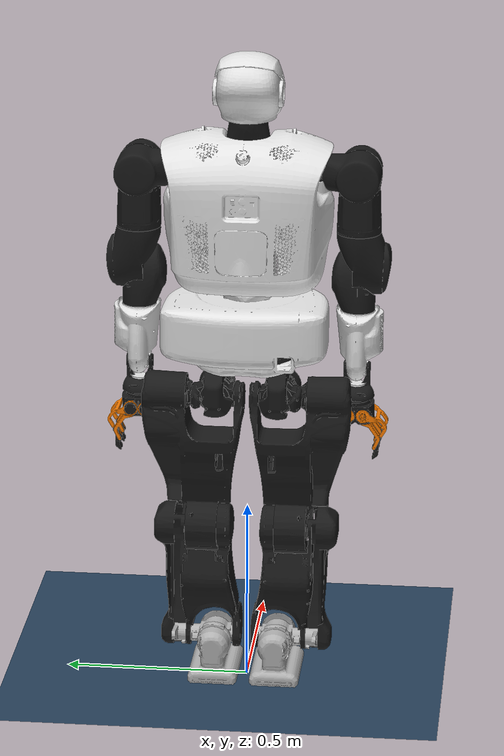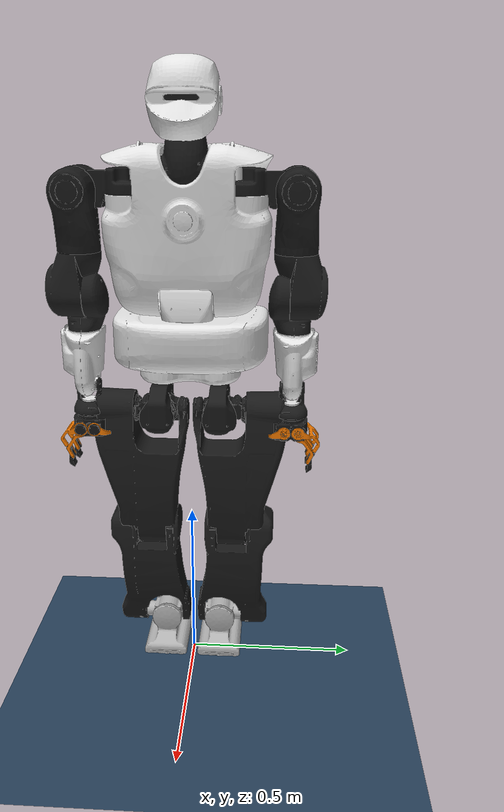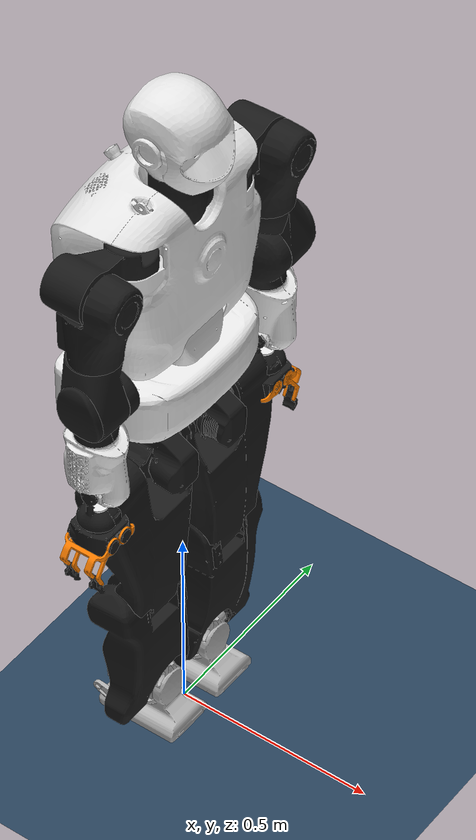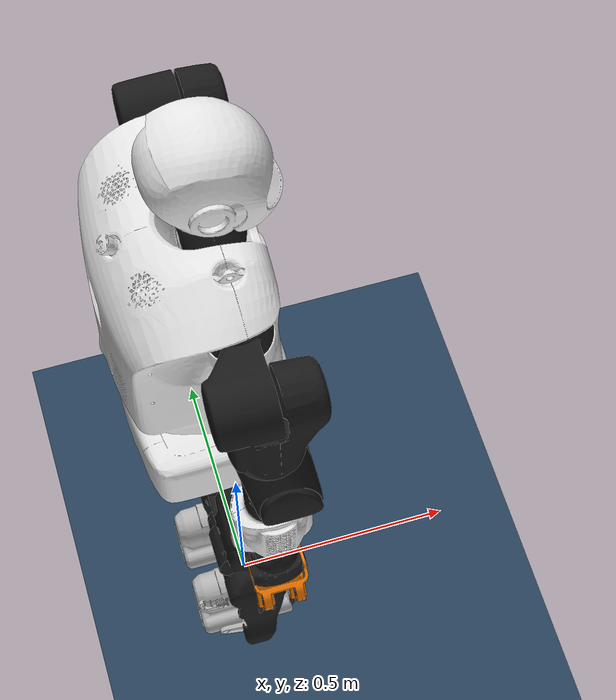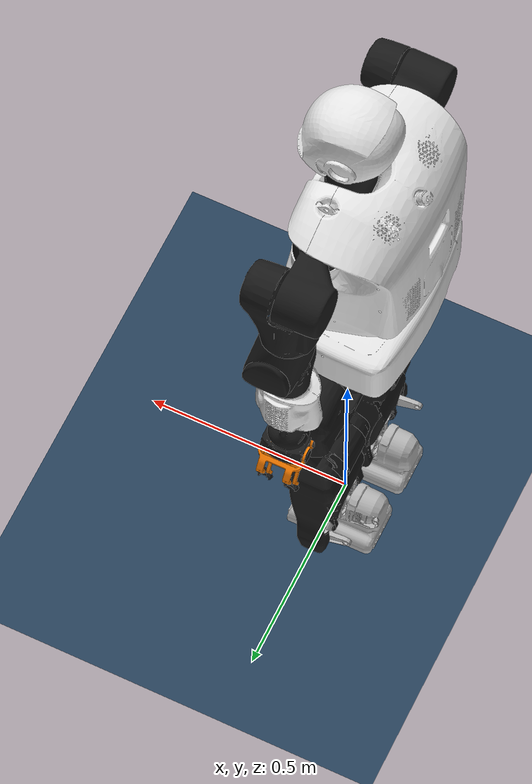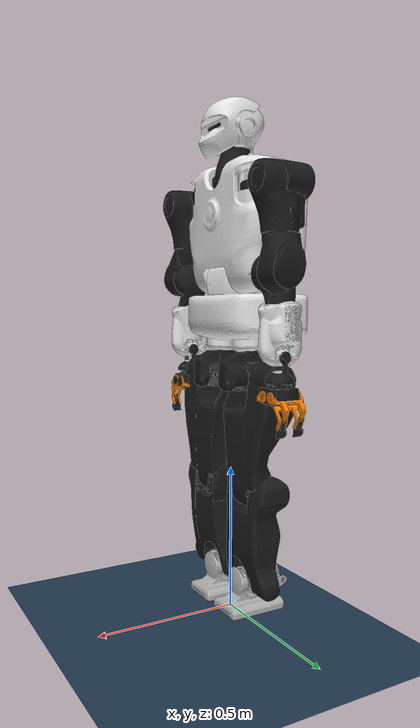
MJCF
<mujoco model="talos position scene">
  <include file="talos_position.xml"/>

  <visual>
    <rgba haze="0.15 0.25 0.35 1"/>
    <global azimuth="160" elevation="-10"/>
    <headlight diffuse="0.6 0.6 0.6" ambient="0.3 0.3 0.3" specular="0 0 0"/>
  </visual>

  <asset>
    <texture type="skybox" builtin="gradient" rgb1="0.3 0.5 0.7" rgb2="0 0 0" width="512" height="3072"/>
    <texture type="2d" name="groundplane" builtin="checker" mark="edge" rgb1="0.2 0.3 0.4" rgb2="0.1 0.2 0.3"
      markrgb="0.8 0.8 0.8" width="300" height="300"/>
    <material name="groundplane" texture="groundplane" texuniform="true" texrepeat="5 5" reflectance="0.2"/>
  </asset>

  <worldbody>
    <light name="spotlight" mode="targetbody" target="base_link" pos="1 0 20"/>
    <geom name="floor" size="0 0 0.05" type="plane" material="groundplane"/>
  </worldbody>
</mujoco>

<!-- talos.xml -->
<mujoco model="talos">
  <compiler angle="radian" meshdir="assets" autolimits="true"/>

  <option timestep="0.001" integrator="implicitfast"/>

  <asset>
    <material name="black" rgba="0.1 0.1 0.1 1"/>
    <material name="orange" rgba="1 0.5 0 1"/>
    <material name="white" rgba="0.9 0.9 0.9 1"/>

    <mesh file="torso/torso_1.stl"/>
    <mesh file="torso/torso_2.stl"/>
    <mesh file="torso/torso_2_collision.stl"/>
    <mesh file="torso/base_link.stl"/>
    <mesh file="torso/base_link_collision.stl"/>
    <mesh file="head/head_1.stl"/>
    <mesh file="head/head_1_collision.stl"/>
    <mesh file="head/head_2_default.stl"/>
    <mesh file="head/head_2_default_collision.stl"/>
    <mesh file="sensors/orbbec/orbbec.stl"/>
    <mesh name="l_arm_1" file="arm/arm_1.stl"/>
    <mesh name="l_arm_1c" file="arm/arm_1_collision.stl"/>
    <mesh name="l_arm_2" file="arm/arm_2.stl"/>
    <mesh name="l_arm_2c" file="arm/arm_2_collision.stl"/>
    <mesh name="l_arm_3" file="arm/arm_3.stl"/>
    <mesh name="l_arm_3c" file="arm/arm_3_collision.stl"/>
    <mesh name="l_arm_4" file="arm/arm_4.stl"/>
    <mesh name="l_arm_4c" file="arm/arm_4_collision.stl"/>
    <mesh name="l_arm_5" file="arm/arm_5.stl"/>
    <mesh name="l_arm_5c" file="arm/arm_5_collision.stl"/>
    <mesh name="l_arm_6" file="arm/arm_6.stl"/>
    <mesh name="l_arm_6c" file="arm/arm_6_collision.stl"/>
    <mesh name="l_arm_7" file="arm/arm_7.stl"/>
    <mesh name="l_arm_7c" file="arm/arm_7_collision.stl"/>
    <mesh name="r_arm_1" file="arm/arm_1.stl" scale="1 -1 1"/>
    <mesh name="r_arm_1c" file="arm/arm_1_collision.stl" scale="1 -1 1"/>
    <mesh name="r_arm_2" file="arm/arm_2.stl" scale="1 -1 1"/>
    <mesh name="r_arm_2c" file="arm/arm_2_collision.stl" scale="1 -1 1"/>
    <mesh name="r_arm_3" file="arm/arm_3.stl" scale="1 -1 1"/>
    <mesh name="r_arm_3c" file="arm/arm_3_collision.stl" scale="1 -1 1"/>
    <mesh name="r_arm_4" file="arm/arm_4.stl" scale="1 -1 1"/>
    <mesh name="r_arm_4c" file="arm/arm_4_collision.stl" scale="1 -1 1"/>
    <mesh name="r_arm_5" file="arm/arm_5.stl" scale="1 -1 1"/>
    <mesh name="r_arm_5c" file="arm/arm_5_collision.stl" scale="1 -1 1"/>
    <mesh name="r_arm_6" file="arm/arm_6.stl" scale="1 -1 1"/>
    <mesh name="r_arm_6c" file="arm/arm_6_collision.stl" scale="1 -1 1"/>
    <mesh name="r_arm_7" file="arm/arm_7.stl" scale="1 -1 1"/>
    <mesh name="r_arm_7c" file="arm/arm_7_collision.stl" scale="1 -1 1"/>
    <mesh name="gripper_base_link" file="gripper/base_link.stl"/>
    <mesh name="gripper_base_link_collision" file="gripper/base_link_collision.stl"/>
    <mesh file="gripper/fingertip.stl"/>
    <mesh file="gripper/fingertip_collision.stl"/>
    <mesh file="gripper/gripper_motor_double.stl"/>
    <mesh file="gripper/gripper_motor_double_collision.stl"/>
    <mesh file="gripper/gripper_motor_single.stl"/>
    <mesh file="gripper/gripper_motor_single_collision.stl"/>
    <mesh file="gripper/inner_double.stl"/>
    <mesh file="gripper/inner_double_collision.stl"/>
    <mesh file="gripper/inner_single.stl"/>
    <mesh file="gripper/inner_single_collision.stl"/>
    <mesh name="l_hip_z_lo_res" file="v2/hip_z_lo_res.stl"/>
    <mesh name="l_hip_z_collision" file="v2/hip_z_collision.stl"/>
    <mesh name="l_hip_x_lo_res" file="v2/hip_x_lo_res.stl"/>
    <mesh name="l_hip_x_collision" file="v2/hip_x_collision.stl"/>
    <mesh name="l_hip_y_lo_res" file="v2/hip_y_lo_res.stl"/>
    <mesh name="l_hip_y_collision" file="v2/hip_y_collision.stl"/>
    <mesh name="l_knee_lo_res" file="v2/knee_lo_res.stl"/>
    <mesh name="l_knee_collision" file="v2/knee_collision.stl"/>
    <mesh name="l_ankle_Y_lo_res" file="v2/ankle_Y_lo_res.stl"/>
    <mesh name="l_ankle_Y_collision" file="v2/ankle_Y_collision.stl"/>
    <mesh name="l_ankle_X_lo_res" file="v2/ankle_X_lo_res.stl"/>
    <mesh name="l_ankle_X_collision" file="v2/ankle_X_collision.stl" scale="1 1 0.88"/>
    <mesh name="r_hip_z_lo_res" file="v2/hip_z_lo_res.stl" scale="1 -1 1"/>
    <mesh name="r_hip_z_collision" file="v2/hip_z_collision.stl" scale="1 -1 1"/>
    <mesh name="r_hip_x_lo_res" file="v2/hip_x_lo_res.stl" scale="1 -1 1"/>
    <mesh name="r_hip_x_collision" file="v2/hip_x_collision.stl" scale="1 -1 1"/>
    <mesh name="r_hip_y_lo_res" file="v2/hip_y_lo_res.stl" scale="1 -1 1"/>
    <mesh name="r_hip_y_collision" file="v2/hip_y_collision.stl" scale="1 -1 1"/>
    <mesh name="r_knee_lo_res" file="v2/knee_lo_res.stl" scale="1 -1 1"/>
    <mesh name="r_knee_collision" file="v2/knee_collision.stl" scale="1 -1 1"/>
    <mesh name="r_ankle_Y_lo_res" file="v2/ankle_Y_lo_res.stl" scale="1 -1 1"/>
    <mesh name="r_ankle_Y_collision" file="v2/ankle_Y_collision.stl" scale="1 -1 1"/>
    <mesh name="r_ankle_X_lo_res" file="v2/ankle_X_lo_res.stl" scale="1 -1 1"/>
    <mesh name="r_ankle_X_collision" file="v2/ankle_X_collision.stl" scale="1 -1 0.88"/>
  </asset>

  <default>
    <default class="talos">
      <site rgba="1 0 0 1" size="0.01" group="5"/>
      <joint frictionloss="1" damping="1"/>
      <geom type="mesh" solref="0.001 1"/>
      <default class="visual">
        <geom group="2" contype="0" conaffinity="0" density="0"/>
      </default>
      <default class="collision">
        <geom group="3"/>
      </default>
    </default>
  </default>

  <worldbody>
    <body name="base_link" pos="0 0 1.1" childclass="talos">
      <freejoint name="reference"/>
      <inertial pos="-0.05709419 0.00153054 -0.0762521" mass="15.36284"
        fullinertia="0.20105075811 0.08411496729 0.2318908414 0.00023244734 0.0040167728 -0.00087206649"/>
      <geom class="visual" material="white" mesh="base_link"/>
      <geom material="white" mesh="base_link_collision" class="collision"/>
      <body name="torso_1_link" pos="0 0 0.0722">
        <inertial pos="0.00078223 3.528e-05 -0.0178246" quat="0.703744 0.704233 0.0663452 -0.0663278" mass="2.29466"
          diaginertia="0.00639091 0.00622386 0.00410256"/>
        <joint name="torso_1_joint" axis="0 0 1" range="-1.25664 1.25664" frictionloss="2" actuatorfrcrange="-200 200"/>
        <geom class="visual" material="white" mesh="torso_1"/>
        <geom class="collision" material="white" mesh="torso_1"/>
        <body name="torso_2_link">
          <inertial pos="-0.0463 -0.000989647 0.145241" quat="0.704021 0.708473 0.0363665 -0.0331367" mass="16.984"
            diaginertia="0.444971 0.320913 0.299991"/>
          <joint name="torso_2_joint" axis="0 1 0" range="-0.226893 0.733038" frictionloss="2"
            actuatorfrcrange="-200 200"/>
          <geom class="visual" material="white" mesh="torso_2"/>
          <geom material="white" mesh="torso_2_collision" class="collision"/>
          <geom size="0.005 0.005 0.005" pos="0.04925 0 0.078" quat="0 1 1 0" type="box" class="visual" density="0"
            material="black"/>
          <body name="head_1_link" pos="0 0 0.316">
            <inertial pos="-0.00157211 -0.00157919 0.0217577" quat="0.679576 0.71147 -0.126684 0.126246" mass="0.73746"
              diaginertia="0.0022809 0.00202202 0.00110971"/>
            <joint name="head_1_joint" axis="0 1 0" range="-0.20944 0.785398" damping="0.5" actuatorfrcrange="-8 8"/>
            <geom class="visual" mesh="head_1" material="black"/>
            <geom mesh="head_1_collision" class="collision" material="black"/>
            <body name="head_2_link">
              <site name="head" pos="0 0 0.2"/>
              <inertial pos="0.0108233 0.000630364 0.142045" quat="0.584927 -0.0294601 -0.0201927 0.810299"
                mass="1.46795" diaginertia="0.0110721 0.0109715 0.00581517"/>
              <joint name="head_2_joint" axis="0 0 1" range="-1.309 1.309" damping="0.5" actuatorfrcrange="-4 4"/>
              <geom class="visual" material="white" mesh="head_2_default"/>
              <geom material="white" mesh="head_2_default_collision" class="collision"/>
              <geom pos="0.0621 0.0375 0.1832" class="visual" mesh="orbbec" material="black"/>
            </body>
          </body>
          <body name="arm_left_1_link" pos="0 0.1575 0.232">
            <inertial pos="-0.0002762 0.100602 0.0443742" quat="0.509187 0.520076 -0.492016 0.477671" mass="2.71457"
              diaginertia="0.0135919 0.012374 0.00418528"/>
            <joint name="arm_left_1_joint" axis="0 0 1" range="-1.5708 0.785398" actuatorfrcrange="-100 100"/>
            <geom class="visual" mesh="l_arm_1" material="black"/>
            <geom mesh="l_arm_1c" class="collision" material="black"/>
            <body name="arm_left_2_link" pos="0.00493 0.1365 0.04673">
              <inertial pos="0.0143883 0.00092938 -0.0868427" quat="0.981914 0.00964503 0.164999 0.0923476"
                mass="2.42509" diaginertia="0.0140925 0.0138001 0.00368288"/>
              <joint name="arm_left_2_joint" axis="1 0 0" range="0.00872665 2.87107" actuatorfrcrange="-100 100"/>
              <geom class="visual" mesh="l_arm_2" material="black"/>
              <geom mesh="l_arm_2c" class="collision" material="black"/>
              <body name="arm_left_3_link">
                <inertial pos="0.0136084 0.0124162 -0.2499" quat="0.991718 0.0691072 -0.105592 -0.0238848"
                  mass="2.20874" diaginertia="0.00735601 0.00699198 0.0036592"/>
                <joint name="arm_left_3_joint" axis="0 0 1" range="-2.42601 2.42601" actuatorfrcrange="-70 70"/>
                <geom class="visual" mesh="l_arm_3" material="black"/>
                <geom mesh="l_arm_3c" class="collision" material="black"/>
                <body name="arm_left_4_link" pos="0.02 0 -0.2782">
                  <inertial pos="-0.00810404 -0.0194433 -0.0332924" quat="0.428586 -0.11894 0.057285 0.893804"
                    mass="0.815675" diaginertia="0.00326211 0.002924 0.00111543"/>
                  <joint name="arm_left_4_joint" axis="0 1 0" range="-2.23402 -0.00349066" actuatorfrcrange="-70 70"/>
                  <geom class="visual" mesh="l_arm_4" material="black"/>
                  <geom mesh="l_arm_4c" class="collision" material="black"/>
                  <body name="arm_left_5_link" pos="-0.02 0 -0.2643">
                    <inertial pos="-6e-05 0.003262 0.079625" quat="0.711712 -0.019748 0.0131536 0.70207" mass="1.87792"
                      diaginertia="0.004373 0.003495 0.002278"/>
                    <joint name="arm_left_5_joint" axis="0 0 1" range="-2.51327 2.51327" actuatorfrcrange="-20 20"/>
                    <geom class="visual" material="white" mesh="l_arm_5"/>
                    <geom material="white" mesh="l_arm_5c" class="collision"/>
                    <body name="arm_left_6_link">
                      <inertial pos="2.1e-05 -0.001965 -0.000591" quat="0.0104356 0.706678 0.0122672 0.707352"
                        mass="0.40931" diaginertia="0.000154 0.000141 0.000107"/>
                      <joint name="arm_left_6_joint" axis="1 0 0" range="-1.37008 1.37008" actuatorfrcrange="-8 8"/>
                      <geom class="visual" material="white" mesh="l_arm_6"/>
                      <geom material="white" mesh="l_arm_6c" class="collision"/>
                      <body name="arm_left_7_link">
                        <inertial pos="0.00215393 0.00361697 -0.0837948" quat="0.966304 0.0192407 0.0500561 -0.251755"
                          mass="1.04198" diaginertia="0.00273016 0.00272405 0.0010495"/>
                        <joint name="arm_left_7_joint" axis="0 1 0" range="-0.680678 0.680678" actuatorfrcrange="-8 8"/>
                        <geom class="visual" mesh="l_arm_7" material="black"/>
                        <geom mesh="l_arm_7c" class="collision" material="black"/>
                        <geom size="0.0225 0.00785" pos="0 0 -0.051" quat="-1 0 0 -1" type="cylinder" class="visual"
                          material="white"/>
                        <geom size="0.0225 0.00785" pos="0 0 -0.051" quat="-1 0 0 -1" type="cylinder" material="white"
                          class="collision"/>
                        <geom size="0.025 0.004875" pos="0 0 -0.063725" type="cylinder" class="visual"
                          material="black"/>
                        <geom size="0.025 0.004875" pos="0 0 -0.063725" type="cylinder" class="collision"
                          material="black"/>
                        <geom pos="0 0 -0.092475" class="visual" mesh="gripper_base_link" material="black"/>
                        <geom pos="0 0 -0.092475" mesh="gripper_base_link_collision" class="collision"
                          material="black"/>
                        <body name="gripper_left_motor_double_link" pos="0 0.02025 -0.122475">
                          <inertial pos="0.019654 0.018572 -0.011998" quat="0.434706 0.588708 -0.0217956 0.68116"
                            mass="0.134356" diaginertia="0.000272 0.000221 8e-05"/>
                          <joint name="gripper_left_joint" axis="1 0 0" range="-0.959931 0"/>
                          <geom class="visual" material="orange" mesh="gripper_motor_double"/>
                          <geom material="orange" mesh="gripper_motor_double_collision" class="collision"/>
                        </body>
                        <body name="gripper_left_inner_double_link" pos="0 0.00525 -0.148455">
                          <inertial pos="-0.013283 0.036852 -0.023153" quat="0.312568 0.633813 0.365244 0.605953"
                            mass="0.087986" diaginertia="0.000144 8.89999e-05 7.4e-05"/>
                          <joint name="gripper_left_inner_double_joint" axis="1 0 0" range="-1.0472 0"/>
                          <geom class="visual" material="orange" mesh="inner_double"/>
                          <geom material="orange" mesh="inner_double_collision" class="collision"/>
                          <body name="gripper_left_fingertip_1_link" pos="0.032 0.04589 -0.06553">
                            <inertial pos="0 0.004604 -0.002537" quat="0.70316 -0.074603 0.074603 0.70316"
                              mass="0.026301" diaginertia="8.99999e-06 8e-06 2e-06"/>
                            <joint name="gripper_left_fingertip_1_joint" axis="1 0 0" range="0 1.0472"/>
                            <geom class="visual" mesh="fingertip" material="black"/>
                            <geom mesh="fingertip_collision" class="collision" material="black"/>
                          </body>
                          <body name="gripper_left_fingertip_2_link" pos="-0.032 0.04589 -0.06553">
                            <inertial pos="0 0.004604 -0.002537" quat="0.70316 -0.074603 0.074603 0.70316"
                              mass="0.026301" diaginertia="8.99999e-06 8e-06 2e-06"/>
                            <joint name="gripper_left_fingertip_2_joint" axis="1 0 0" range="0 1.0472"/>
                            <geom class="visual" mesh="fingertip" material="black"/>
                            <geom mesh="fingertip_collision" class="collision" material="black"/>
                          </body>
                        </body>
                        <body name="gripper_left_motor_single_link" pos="0 -0.02025 -0.122475">
                          <inertial pos="0.025237 -0.011231 -0.008158" quat="-0.429079 0.588757 0.0530926 0.682962"
                            mass="0.107923" diaginertia="0.000171 0.000142 5.1e-05"/>
                          <joint name="gripper_left_motor_single_joint" axis="1 0 0" range="0 1.0472"/>
                          <geom class="visual" material="orange" mesh="gripper_motor_single"/>
                          <geom material="orange" mesh="gripper_motor_single_collision" class="collision"/>
                        </body>
                        <body name="gripper_left_inner_single_link" pos="0 -0.00525 -0.148455">
                          <inertial pos="0 -0.034565 -0.021412" quat="0.672196 -0.216723 0.212111 0.67542"
                            mass="0.047177" diaginertia="4.3e-05 4.2e-05 1.1e-05"/>
                          <joint name="gripper_left_inner_single_joint" axis="1 0 0" range="0 1.0472"/>
                          <geom class="visual" material="orange" mesh="inner_single"/>
                          <geom material="orange" mesh="inner_single_collision" class="collision"/>
                          <body name="gripper_left_fingertip_3_link" pos="0 -0.04589 -0.06553" quat="0 0 0 1">
                            <inertial pos="0 0.004604 -0.002537" quat="0.70316 -0.074603 0.074603 0.70316"
                              mass="0.026301" diaginertia="8.99999e-06 8e-06 2e-06"/>
                            <joint name="gripper_left_fingertip_3_joint" axis="1 0 0" range="0 1.0472"/>
                            <geom class="visual" mesh="fingertip" material="black"/>
                            <geom mesh="fingertip_collision" class="collision" material="black"/>
                            <site name="left_palm" pos="0 -0.05 0"/>
                          </body>
                        </body>
                      </body>
                    </body>
                  </body>
                </body>
              </body>
            </body>
          </body>
          <body name="arm_right_1_link" pos="0 -0.1575 0.232">
            <inertial pos="-0.0002762 -0.100602 0.0443742" quat="0.520076 0.509187 -0.477671 0.492016" mass="2.71457"
              diaginertia="0.0135919 0.012374 0.00418528"/>
            <joint name="arm_right_1_joint" axis="0 0 1" range="-0.785398 1.5708" actuatorfrcrange="-100 100"/>
            <geom class="visual" mesh="r_arm_1" material="black"/>
            <geom mesh="r_arm_1c" class="collision" material="black"/>
            <body name="arm_right_2_link" pos="0.00493 -0.1365 0.04673">
              <inertial pos="0.0143883 -0.00092938 -0.0868427" quat="0.981914 -0.00964503 0.164999 -0.0923476"
                mass="2.42509" diaginertia="0.0140925 0.0138001 0.00368288"/>
              <joint name="arm_right_2_joint" axis="1 0 0" range="-2.87107 -0.00872665" actuatorfrcrange="-100 100"/>
              <geom class="visual" mesh="r_arm_2" material="black"/>
              <geom mesh="r_arm_2c" class="collision" material="black"/>
              <body name="arm_right_3_link">
                <inertial pos="0.0136084 -0.0124162 -0.2499" quat="0.991718 -0.0691072 -0.105592 0.0238848"
                  mass="2.20874" diaginertia="0.00735601 0.00699198 0.0036592"/>
                <joint name="arm_right_3_joint" axis="0 0 1" range="-2.42601 2.42601" actuatorfrcrange="-70 70"/>
                <geom class="visual" mesh="r_arm_3" material="black"/>
                <geom mesh="r_arm_3c" class="collision" material="black"/>
                <body name="arm_right_4_link" pos="0.02 0 -0.2782">
                  <inertial pos="-0.00810404 -0.0194433 -0.0332924" quat="0.428586 -0.11894 0.057285 0.893804"
                    mass="0.815675" diaginertia="0.00326211 0.002924 0.00111543"/>
                  <joint name="arm_right_4_joint" axis="0 1 0" range="-2.23402 -0.00349066" actuatorfrcrange="-70 70"/>
                  <geom class="visual" mesh="r_arm_4" material="black"/>
                  <geom mesh="r_arm_4c" class="collision" material="black"/>
                  <body name="arm_right_5_link" pos="-0.02 0 -0.2643">
                    <inertial pos="-6e-05 -0.003262 0.079625" quat="0.70207 0.0131536 -0.019748 0.711712" mass="1.87792"
                      diaginertia="0.004373 0.003495 0.002278"/>
                    <joint name="arm_right_5_joint" axis="0 0 1" range="-2.51327 2.51327" actuatorfrcrange="-20 20"/>
                    <geom class="visual" material="white" mesh="r_arm_5"/>
                    <geom material="white" mesh="r_arm_5c" class="collision"/>
                    <body name="arm_right_6_link">
                      <inertial pos="2.1e-05 0.001965 -0.000591" quat="-0.0104356 0.706678 -0.0122672 0.707352"
                        mass="0.40931" diaginertia="0.000154 0.000141 0.000107"/>
                      <joint name="arm_right_6_joint" axis="1 0 0" range="-1.37008 1.37008" actuatorfrcrange="-8 8"/>
                      <geom class="visual" material="white" mesh="r_arm_6"/>
                      <geom material="white" mesh="r_arm_6c" class="collision"/>
                      <body name="arm_right_7_link">
                        <inertial pos="0.0023011 -0.00361697 -0.0837948" quat="0.927123 -0.0149278 0.0465372 0.371557"
                          mass="1.04198" diaginertia="0.00273231 0.00271796 0.00105208"/>
                        <joint name="arm_right_7_joint" axis="0 1 0" range="-0.680678 0.680678"
                          actuatorfrcrange="-8 8"/>
                        <geom class="visual" mesh="r_arm_7" material="black"/>
                        <geom mesh="r_arm_7c" class="collision" material="black"/>
                        <geom size="0.0225 0.00785" pos="0 0 -0.051" quat="1 0 0 -1" type="cylinder" class="visual"
                          material="white"/>
                        <geom size="0.0225 0.00785" pos="0 0 -0.051" quat="1 0 0 -1" type="cylinder" material="white"
                          class="collision"/>
                        <geom size="0.025 0.004875" pos="0 0 -0.063725" quat="0 0 0 -1" type="cylinder" class="visual"
                          material="black"/>
                        <geom size="0.025 0.004875" pos="0 0 -0.063725" quat="0 0 0 -1" type="cylinder" material="black"
                          class="collision"/>
                        <geom pos="0 0 -0.092475" quat="0 0 0 -1" class="visual" mesh="gripper_base_link"
                          material="black"/>
                        <geom pos="0 0 -0.092475" quat="0 0 0 -1" mesh="gripper_base_link_collision" class="collision"
                          material="black"/>
                        <body name="gripper_right_motor_double_link" pos="0 -0.02025 -0.122475" quat="0 0 0 -1">
                          <inertial pos="0.019654 0.018572 -0.011998" quat="0.434706 0.588708 -0.0217956 0.68116"
                            mass="0.134356" diaginertia="0.000272 0.000221 8e-05"/>
                          <joint name="gripper_right_joint" axis="1 0 0" range="-0.959931 0"/>
                          <geom class="visual" material="orange" mesh="gripper_motor_double"/>
                          <geom material="orange" mesh="gripper_motor_double_collision" class="collision"/>
                        </body>
                        <body name="gripper_right_inner_double_link" pos="0 -0.00525 -0.148455" quat="0 0 0 -1">
                          <inertial pos="-0.013283 0.036852 -0.023153" quat="0.312568 0.633813 0.365244 0.605953"
                            mass="0.087986" diaginertia="0.000144 8.89999e-05 7.4e-05"/>
                          <joint name="gripper_right_inner_double_joint" axis="1 0 0" range="-1.0472 0"/>
                          <geom class="visual" material="orange" mesh="inner_double"/>
                          <geom material="orange" mesh="inner_double_collision" class="collision"/>
                          <body name="gripper_right_fingertip_1_link" pos="0.032 0.04589 -0.06553">
                            <inertial pos="0 0.004604 -0.002537" quat="0.70316 -0.074603 0.074603 0.70316"
                              mass="0.026301" diaginertia="8.99999e-06 8e-06 2e-06"/>
                            <joint name="gripper_right_fingertip_1_joint" axis="1 0 0" range="0 1.0472"/>
                            <geom class="visual" mesh="fingertip" material="black"/>
                            <geom mesh="fingertip_collision" class="collision" material="black"/>
                          </body>
                          <body name="gripper_right_fingertip_2_link" pos="-0.032 0.04589 -0.06553">
                            <inertial pos="0 0.004604 -0.002537" quat="0.70316 -0.074603 0.074603 0.70316"
                              mass="0.026301" diaginertia="8.99999e-06 8e-06 2e-06"/>
                            <joint name="gripper_right_fingertip_2_joint" axis="1 0 0" range="0 1.0472"/>
                            <geom class="visual" mesh="fingertip" material="black"/>
                            <geom mesh="fingertip_collision" class="collision" material="black"/>
                            <site name="right_palm" pos="0 -0.05 0"/>
                          </body>
                        </body>
                        <body name="gripper_right_motor_single_link" pos="0 0.02025 -0.122475" quat="0 0 0 -1">
                          <inertial pos="0.025237 -0.011231 -0.008158" quat="-0.429079 0.588757 0.0530926 0.682962"
                            mass="0.107923" diaginertia="0.000171 0.000142 5.1e-05"/>
                          <joint name="gripper_right_motor_single_joint" axis="1 0 0" range="0 1.0472"/>
                          <geom class="visual" material="orange" mesh="gripper_motor_single"/>
                          <geom material="orange" mesh="gripper_motor_single_collision" class="collision"/>
                        </body>
                        <body name="gripper_right_inner_single_link" pos="0 0.00525 -0.148455" quat="0 0 0 -1">
                          <inertial pos="0 -0.034565 -0.021412" quat="0.672196 -0.216723 0.212111 0.67542"
                            mass="0.047177" diaginertia="4.3e-05 4.2e-05 1.1e-05"/>
                          <joint name="gripper_right_inner_single_joint" axis="1 0 0" range="0 1.0472"/>
                          <geom class="visual" material="orange" mesh="inner_single"/>
                          <geom material="orange" mesh="inner_single_collision" class="collision"/>
                          <body name="gripper_right_fingertip_3_link" pos="0 -0.04589 -0.06553" quat="0 0 0 1">
                            <inertial pos="0 0.004604 -0.002537" quat="0.70316 -0.074603 0.074603 0.70316"
                              mass="0.026301" diaginertia="8.99999e-06 8e-06 2e-06"/>
                            <joint name="gripper_right_fingertip_3_joint" axis="1 0 0" range="0 1.0472"/>
                            <geom class="visual" mesh="fingertip" material="black"/>
                            <geom mesh="fingertip_collision" class="collision" material="black"/>
                          </body>
                        </body>
                      </body>
                    </body>
                  </body>
                </body>
              </body>
            </body>
          </body>
        </body>
      </body>
      <body name="leg_left_1_link" pos="-0.02 0.085 -0.27105">
        <inertial pos="0.0847284 0.109974 0.017059" quat="0.522748 -0.852371 -0.00673577 0.012351" mass="2.23501"
          diaginertia="0.0105013 0.0076913 0.00473271"/>
        <joint name="leg_left_1_joint" axis="0 0 1" range="-0.349066 1.5708" actuatorfrcrange="-100 100"/>
        <geom class="visual" mesh="l_hip_z_lo_res" material="black"/>
        <geom mesh="l_hip_z_collision" class="collision" material="black"/>
        <body name="leg_left_2_link">
          <inertial pos="-0.00704703 0.0259266 0.00273385" quat="0.712294 0.701399 -0.00472331 -0.0255805"
            mass="1.49095" diaginertia="0.00497732 0.00474343 0.00189918"/>
          <joint name="leg_left_2_joint" axis="1 0 0" range="-0.5236 0.5236" actuatorfrcrange="-160 160"/>
          <geom class="visual" mesh="l_hip_x_lo_res" material="black"/>
          <geom mesh="l_hip_x_collision" class="collision" material="black"/>
          <body name="leg_left_3_link">
            <inertial pos="0.0058523 0.0636967 -0.183396" quat="0.995121 -0.0974306 -0.00559068 0.0145098"
              mass="6.23987" diaginertia="0.153409 0.140791 0.0256712"/>
            <joint name="leg_left_3_joint" axis="0 1 0" range="-2.095 0.7" actuatorfrcrange="-160 160"/>
            <geom class="visual" mesh="l_hip_y_lo_res" material="black"/>
            <geom mesh="l_hip_y_collision" class="collision" material="black"/>
            <body name="leg_left_4_link" pos="0 0 -0.38">
              <inertial pos="0.0131772 0.0291751 -0.115946" quat="0.999357 0.00773677 -0.0135107 0.0322952"
                mass="3.75995" diaginertia="0.0429266 0.0359662 0.013621"/>
              <joint name="leg_left_4_joint" axis="0 1 0" range="0 2.618" actuatorfrcrange="-400 400"/>
              <geom class="visual" mesh="l_knee_lo_res" material="black"/>
              <geom mesh="l_knee_collision" class="collision" material="black"/>
              <body name="leg_left_5_link" pos="0 0 -0.325">
                <inertial pos="-0.0140084 0.0418006 0.0382019" quat="0.94386 -0.249123 0.00319491 0.216924"
                  mass="1.29096" diaginertia="0.0118206 0.010046 0.00352112"/>
                <joint name="leg_left_5_joint" axis="0 1 0" range="-1.27 0.68" actuatorfrcrange="-160 160"/>
                <geom class="visual" rgba="0.7 0.7 0.7 1" mesh="l_ankle_Y_lo_res"/>
                <geom rgba="0.7 0.7 0.7 1" mesh="l_ankle_Y_collision" class="collision"/>
                <body name="leg_left_6_link">
                  <inertial pos="-0.0201699 -0.000510665 -0.0602836" quat="0.343485 0.610901 0.618186 0.3559"
                    mass="1.61177" diaginertia="0.00773279 0.006503 0.00387932"/>
                  <joint name="leg_left_6_joint" axis="1 0 0" range="-0.5236 0.5236" actuatorfrcrange="-100 100"/>
                  <geom class="visual" rgba="0.7 0.7 0.7 1" mesh="l_ankle_X_lo_res"/>
                  <geom class="collision" contype="6" type="box" size=".1 .06 .006" pos="-0.005 0 -.1"/>
                  <site name="left_foot" pos="0 0 -0.1"/>
                </body>
              </body>
            </body>
          </body>
        </body>
      </body>
      <body name="leg_right_1_link" pos="-0.02 -0.085 -0.27105">
        <inertial pos="0.0847284 -0.109974 0.017059" quat="0.522748 0.852371 -0.00673577 0.012351" mass="2.23501"
          diaginertia="0.0105013 0.0076913 0.00473271"/>
        <joint name="leg_right_1_joint" axis="0 0 1" range="-1.5708 0.349066" actuatorfrcrange="-100 100"/>
        <geom class="visual" mesh="r_hip_z_lo_res" material="black"/>
        <geom mesh="r_hip_z_collision" class="collision" material="black"/>
        <body name="leg_right_2_link">
          <inertial pos="-0.00704703 -0.0259266 0.00273385" quat="0.701399 0.712294 0.0255805 0.00472331" mass="1.49095"
            diaginertia="0.00497732 0.00474343 0.00189918"/>
          <joint name="leg_right_2_joint" axis="1 0 0" range="-0.5236 0.5236" actuatorfrcrange="-160 160"/>
          <geom class="visual" mesh="r_hip_x_lo_res" material="black"/>
          <geom mesh="r_hip_x_collision" class="collision" material="black"/>
          <body name="leg_right_3_link">
            <inertial pos="0.0058523 -0.0636967 -0.183396" quat="0.995121 0.0974306 -0.00559068 -0.0145098"
              mass="6.23987" diaginertia="0.153409 0.140791 0.0256712"/>
            <joint name="leg_right_3_joint" axis="0 1 0" range="-2.095 0.7" actuatorfrcrange="-160 160"/>
            <geom class="visual" mesh="r_hip_y_lo_res" material="black"/>
            <geom mesh="r_hip_y_collision" class="collision" material="black"/>
            <body name="leg_right_4_link" pos="0 0 -0.38">
              <inertial pos="0.0131772 -0.0291751 -0.115946" quat="0.999357 -0.00773677 -0.0135107 -0.0322952"
                mass="3.75995" diaginertia="0.0429266 0.0359662 0.013621"/>
              <joint name="leg_right_4_joint" axis="0 1 0" range="0 2.618" actuatorfrcrange="-400 400"/>
              <geom class="visual" mesh="r_knee_lo_res" material="black"/>
              <geom mesh="r_knee_collision" class="collision" material="black"/>
              <body name="leg_right_5_link" pos="0 0 -0.325">
                <inertial pos="-0.0140084 -0.0418006 0.0382019" quat="0.94386 0.249123 0.00319491 -0.216924"
                  mass="1.29096" diaginertia="0.0118206 0.010046 0.00352112"/>
                <joint name="leg_right_5_joint" axis="0 1 0" range="-1.27 0.68" actuatorfrcrange="-160 160"/>
                <geom class="visual" rgba="0.7 0.7 0.7 1" mesh="r_ankle_Y_lo_res"/>
                <geom rgba="0.7 0.7 0.7 1" mesh="r_ankle_Y_collision" class="collision"/>
                <body name="leg_right_6_link">
                  <inertial pos="-0.0201699 0.000510665 -0.0602836" quat="0.3559 0.618186 0.610901 0.343485"
                    mass="1.61177" diaginertia="0.00773279 0.006503 0.00387932"/>
                  <joint name="leg_right_6_joint" axis="1 0 0" range="-0.5236 0.5236" actuatorfrcrange="-100 100"/>
                  <geom class="visual" rgba="0.7 0.7 0.7 1" mesh="r_ankle_X_lo_res"/>
                  <geom class="collision" contype="6" type="box" size=".1 .06 .006" pos="-0.005 0 -.1"/>
                  <site name="right_foot" pos="0 0 -0.1"/>
                </body>
              </body>
            </body>
          </body>
        </body>
      </body>
    </body>
  </worldbody>

  <contact>
    <exclude body1="torso_2_link" body2="base_link"/>
    <exclude body1="arm_left_7_link" body2="arm_left_4_link"/>
    <exclude body1="arm_right_7_link" body2="arm_right_4_link"/>
    <exclude body1="arm_left_7_link" body2="arm_left_6_link"/>
    <exclude body1="arm_right_7_link" body2="arm_right_6_link"/>
    <exclude body1="arm_left_7_link" body2="arm_left_5_link"/>
    <exclude body1="arm_right_7_link" body2="arm_right_5_link"/>
    <exclude body1="leg_left_3_link" body2="leg_left_4_link"/>
    <exclude body1="leg_right_3_link" body2="leg_right_4_link"/>
    <exclude body1="leg_left_3_link" body2="leg_left_2_link"/>
    <exclude body1="leg_right_3_link" body2="leg_right_2_link"/>
    <exclude body1="leg_left_3_link" body2="leg_left_1_link"/>
    <exclude body1="leg_right_3_link" body2="leg_right_1_link"/>
    <exclude body1="leg_left_3_link" body2="base_link"/>
    <exclude body1="leg_right_3_link" body2="base_link"/>
    <exclude body1="leg_left_6_link" body2="leg_left_4_link"/>
    <exclude body1="leg_right_6_link" body2="leg_right_4_link"/>
    <!-- Gripper excludes -->
    <!-- left gripper -->
    <exclude body1="arm_left_7_link" body2="gripper_left_inner_double_link"/>
    <exclude body1="leg_left_4_link" body2="gripper_left_motor_single_link"/>
    <exclude body1="arm_left_7_link" body2="gripper_left_motor_single_link"/>
    <exclude body1="arm_left_7_link" body2="gripper_left_motor_double_link"/>
    <exclude body1="arm_left_7_link" body2="gripper_left_inner_single_link"/>
    <exclude body1="gripper_left_motor_single_link" body2="gripper_left_motor_double_link"/>
    <exclude body1="gripper_left_motor_single_link" body2="gripper_left_inner_double_link"/>
    <exclude body1="gripper_left_motor_single_link" body2="gripper_left_inner_single_link"/>
    <exclude body1="gripper_left_motor_double_link" body2="gripper_left_inner_single_link"/>
    <exclude body1="gripper_left_motor_double_link" body2="gripper_left_inner_double_link"/>
    <exclude body1="gripper_left_motor_double_link" body2="gripper_left_fingertip_2_link"/>
    <exclude body1="gripper_left_motor_single_link" body2="gripper_left_fingertip_3_link"/>
    <exclude body1="gripper_left_fingertip_3_link" body2="gripper_left_fingertip_2_link"/>
    <exclude body1="gripper_left_fingertip_2_link" body2="gripper_left_fingertip_1_link"/>
    <exclude body1="gripper_left_fingertip_3_link" body2="gripper_left_fingertip_1_link"/>
    <!-- right gripper -->
    <exclude body1="arm_right_7_link" body2="gripper_right_inner_double_link"/>
    <exclude body1="leg_right_4_link" body2="gripper_right_motor_single_link"/>
    <exclude body1="arm_right_7_link" body2="gripper_right_motor_single_link"/>
    <exclude body1="arm_right_7_link" body2="gripper_right_motor_double_link"/>
    <exclude body1="arm_right_7_link" body2="gripper_right_inner_single_link"/>
    <exclude body1="gripper_right_motor_single_link" body2="gripper_right_motor_double_link"/>
    <exclude body1="gripper_right_motor_single_link" body2="gripper_right_inner_double_link"/>
    <exclude body1="gripper_right_motor_single_link" body2="gripper_right_inner_single_link"/>
    <exclude body1="gripper_right_motor_double_link" body2="gripper_right_inner_single_link"/>
    <exclude body1="gripper_right_motor_double_link" body2="gripper_right_inner_double_link"/>
    <exclude body1="gripper_right_motor_double_link" body2="gripper_right_fingertip_2_link"/>
    <exclude body1="gripper_right_motor_single_link" body2="gripper_right_fingertip_3_link"/>
    <exclude body1="gripper_right_fingertip_3_link" body2="gripper_right_fingertip_2_link"/>
    <exclude body1="gripper_right_fingertip_2_link" body2="gripper_right_fingertip_1_link"/>
    <exclude body1="gripper_right_fingertip_3_link" body2="gripper_right_fingertip_1_link"/>
  </contact>

  <equality>
    <!-- Joint constraints for left gripper -->
    <joint joint1="gripper_left_motor_single_joint" joint2="gripper_left_joint" solref="0.01 1" polycoef="0 -1 0 0 0"/>
    <joint joint1="gripper_left_joint" joint2="gripper_left_inner_double_joint" solref="0.01 1" polycoef="0 1 0 0 0"/>
    <joint joint1="gripper_left_inner_single_joint" joint2="gripper_left_inner_double_joint" solref="0.01 1"
      polycoef="0 -1 0 0 0"/>
    <!-- Joint constraints for right gripper -->
    <joint joint1="gripper_right_motor_single_joint" joint2="gripper_right_joint" solref="0.01 1"
      polycoef="0 -1 0 0 0"/>
    <joint joint1="gripper_right_joint" joint2="gripper_right_inner_double_joint" solref="0.01 1" polycoef="0 1 0 0 0"/>
    <joint joint1="gripper_right_inner_single_joint" joint2="gripper_right_inner_double_joint" solref="0.01 1"
      polycoef="0 -1 0 0 0"/>
  </equality>
</mujoco>

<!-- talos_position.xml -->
<mujoco model="talos">
  <include file="talos.xml"/>

  <default>
    <default class="position">
      <position dampratio="1"/>
    </default>
  </default>

  <actuator>
    <position class="position" name="torso_1_joint_position" joint="torso_1_joint" kp="2000"
      ctrlrange="-1.2566370614359172 1.2566370614359172"/>
    <position class="position" name="torso_2_joint_position" joint="torso_2_joint" kp="500"
      ctrlrange="-0.22689280275926285 0.7330382858376184"/>
    <position class="position" name="head_1_joint_position" joint="head_1_joint" kp="200"
      ctrlrange="-0.20943951023931956 0.7853981633974483"/>
    <position class="position" name="head_2_joint_position" joint="head_2_joint" kp="1000"
      ctrlrange="-1.3089969389957472 1.3089969389957472"/>
    <position class="position" name="arm_left_1_joint_position" joint="arm_left_1_joint" kp="100"
      ctrlrange="-1.5707963267948966 0.7853981633974483"/>
    <position class="position" name="arm_left_2_joint_position" joint="arm_left_2_joint" kp="100"
      ctrlrange="0.008726646259971648 2.871066619530672"/>
    <position class="position" name="arm_left_3_joint_position" joint="arm_left_3_joint" kp="100"
      ctrlrange="-2.426007660272118 2.426007660272118"/>
    <position class="position" name="arm_left_4_joint_position" joint="arm_left_4_joint" kp="100"
      ctrlrange="-2.234021442552742 -0.003490658503988659"/>
    <position class="position" name="arm_left_5_joint_position" joint="arm_left_5_joint" kp="100"
      ctrlrange="-2.5132741228718345 2.5132741228718345"/>
    <position class="position" name="arm_left_6_joint_position" joint="arm_left_6_joint" kp="100"
      ctrlrange="-1.3700834628155487 1.3700834628155487"/>
    <position class="position" name="arm_left_7_joint_position" joint="arm_left_7_joint" kp="100"
      ctrlrange="-0.6806784082777885 0.6806784082777885"/>
    <position class="position" name="gripper_left_joint_position" joint="gripper_left_joint" kp="1000"
      ctrlrange="-0.9599310885968813 0.0" forcerange="-10 10"/>
    <position class="position" name="arm_right_1_joint_position" joint="arm_right_1_joint" kp="100"
      ctrlrange="-0.7853981633974483 1.5707963267948966"/>
    <position class="position" name="arm_right_2_joint_position" joint="arm_right_2_joint" kp="100"
      ctrlrange="-2.871066619530672 -0.008726646259971648"/>
    <position class="position" name="arm_right_3_joint_position" joint="arm_right_3_joint" kp="100"
      ctrlrange="-2.426007660272118 2.426007660272118"/>
    <position class="position" name="arm_right_4_joint_position" joint="arm_right_4_joint" kp="100"
      ctrlrange="-2.234021442552742 -0.003490658503988659"/>
    <position class="position" name="arm_right_5_joint_position" joint="arm_right_5_joint" kp="100"
      ctrlrange="-2.5132741228718345 2.5132741228718345"/>
    <position class="position" name="arm_right_6_joint_position" joint="arm_right_6_joint" kp="100"
      ctrlrange="-1.3700834628155487 1.3700834628155487"/>
    <position class="position" name="arm_right_7_joint_position" joint="arm_right_7_joint" kp="100"
      ctrlrange="-0.6806784082777885 0.6806784082777885"/>
    <position class="position" name="gripper_right_joint_position" joint="gripper_right_joint" kp="1000"
      ctrlrange="-0.9599310885968813 0.0" forcerange="-10 10"/>
    <position class="position" name="leg_left_1_joint_position" joint="leg_left_1_joint" kp="1000"
      ctrlrange="-0.3490658503988659 1.5707963267948966"/>
    <position class="position" name="leg_left_2_joint_position" joint="leg_left_2_joint" kp="1000"
      ctrlrange="-0.5236 0.5236"/>
    <position class="position" name="leg_left_3_joint_position" joint="leg_left_3_joint" kp="1000"
      ctrlrange="-2.095 0.7"/>
    <position class="position" name="leg_left_4_joint_position" joint="leg_left_4_joint" kp="1000" ctrlrange="0 2.618"/>
    <position class="position" name="leg_left_5_joint_position" joint="leg_left_5_joint" kp="10000"
      ctrlrange="-1.27 0.68"/>
    <position class="position" name="leg_left_6_joint_position" joint="leg_left_6_joint" kp="10000"
      ctrlrange="-0.5236 0.5236"/>
    <position class="position" name="leg_right_1_joint_position" joint="leg_right_1_joint" kp="1000"
      ctrlrange="-1.5707963267948966 0.3490658503988659"/>
    <position class="position" name="leg_right_2_joint_position" joint="leg_right_2_joint" kp="1000"
      ctrlrange="-0.5236 0.5236"/>
    <position class="position" name="leg_right_3_joint_position" joint="leg_right_3_joint" kp="1000"
      ctrlrange="-2.095 0.7"/>
    <position class="position" name="leg_right_4_joint_position" joint="leg_right_4_joint" kp="1000"
      ctrlrange="0 2.618"/>
    <position class="position" name="leg_right_5_joint_position" joint="leg_right_5_joint" kp="10000"
      ctrlrange="-1.27 0.68"/>
    <position class="position" name="leg_right_6_joint_position" joint="leg_right_6_joint" kp="10000"
      ctrlrange="-0.5236 0.5236"/>
  </actuator>

  <keyframe>
    <key name="walk_pose"
      qpos="0 0 1.025 0 0 0 0 0 0.15 0 0 0.3 0.4 -0.5 -1.5 0 0 0 0 -0.4 0 0 0 0 0 -0.3 -0.4 0.5 -1.5 0 0 0 0 -0.4 0 0 0 0 0 0 0 -0.4 0.8 -0.4 0 0 0 -0.4 0.8 -0.4 0"
      ctrl="0 0.15 0 0 0.3 0.4 -0.5 -1.5 0 0 0 -0.4 -0.3 -0.4 0.5 -1.5 0 0 0 -0.4 0 0 -0.4 0.8 -0.4 0 0 0 -0.4 0.8 -0.4 0"/>
  </keyframe>
</mujoco>
